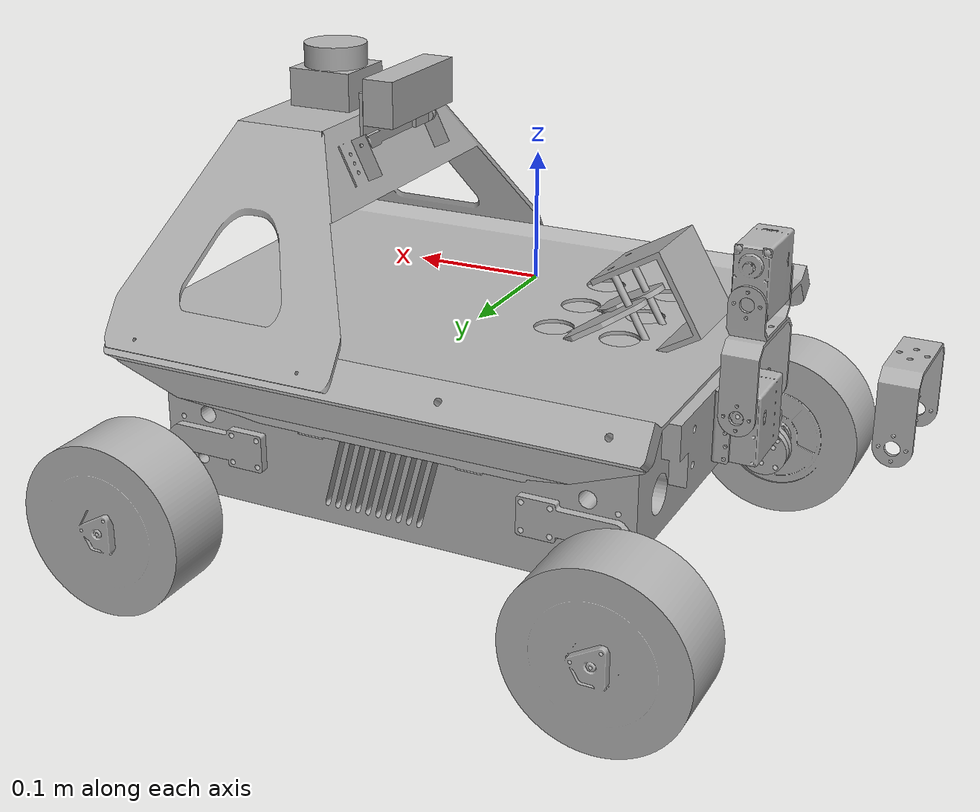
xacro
<?xml version="1.0" ?>
<robot name="v6" xmlns:xacro="http://www.ros.org/wiki/xacro">

<xacro:include filename="$(find v6_description)/urdf/materials.xacro" />
<xacro:include filename="$(find v6_description)/urdf/v6.trans" />
<xacro:include filename="$(find v6_description)/urdf/v6.gazebo" />
<link name="base_link">
  <inertial>
    <origin rpy="0 0 0" xyz="-0.11553126426818264 0.3343509101041353 0.06210098740688249"/>
    <mass value="37.56290080252228"/>
    <inertia ixx="0.155633" ixy="-0.0" ixz="0.000286" iyy="0.297492" iyz="0.0" izz="0.386843"/>
  </inertial>
  <visual>
    <origin rpy="0 0 0" xyz="0 0 0"/>
    <geometry>
      <mesh filename="v6_description/meshes/base_link.stl" scale="0.001 0.001 0.001"/>
    </geometry>
    <material name="silver"/>
  </visual>
  <collision>
    <origin rpy="0 0 0" xyz="0 0 0"/>
    <geometry>
      <mesh filename="v6_description/meshes/base_link.stl" scale="0.001 0.001 0.001"/>
    </geometry>
  </collision>
</link>

<link name="upper_blue_v1_1">
  <inertial>
    <origin rpy="0 0 0" xyz="0.0009557467788307433 0.0018926108398634733 -0.005546368824775272"/>
    <mass value="2.711654241548037"/>
    <inertia ixx="0.029512" ixy="4.7e-05" ixz="-1.7e-05" iyy="0.020937" iyz="-2e-05" izz="0.049756"/>
  </inertial>
  <visual>
    <origin rpy="0 0 0" xyz="0.114065 -0.334351 -0.110913"/>
    <geometry>
      <mesh filename="v6_description/meshes/upper_blue_v1_1.stl" scale="0.001 0.001 0.001"/>
    </geometry>
    <material name="silver"/>
  </visual>
  <collision>
    <origin rpy="0 0 0" xyz="0.114065 -0.334351 -0.110913"/>
    <geometry>
      <mesh filename="v6_description/meshes/upper_blue_v1_1.stl" scale="0.001 0.001 0.001"/>
    </geometry>
  </collision>
</link>

<link name="upper_silver_v1_1">
  <inertial>
    <origin rpy="0 0 0" xyz="-0.05442619134290837 0.1286556607713099 0.06371666752539593"/>
    <mass value="0.5901067825147455"/>
    <inertia ixx="0.004878" ixy="0.0" ixz="3e-05" iyy="0.001458" iyz="-0.0" izz="0.004735"/>
  </inertial>
  <visual>
    <origin rpy="0 0 0" xyz="-0.020935 -0.20677 -0.110239"/>
    <geometry>
      <mesh filename="v6_description/meshes/upper_silver_v1_1.stl" scale="0.001 0.001 0.001"/>
    </geometry>
    <material name="silver"/>
  </visual>
  <collision>
    <origin rpy="0 0 0" xyz="-0.020935 -0.20677 -0.110239"/>
    <geometry>
      <mesh filename="v6_description/meshes/upper_silver_v1_1.stl" scale="0.001 0.001 0.001"/>
    </geometry>
  </collision>
</link>

<link name="Side_U_Bracket_Component1_v2_1">
  <inertial>
    <origin rpy="0 0 0" xyz="-0.0021965017854476687 -8.991875011243877e-08 -8.398858180322377e-05"/>
    <mass value="0.02951040982880665"/>
    <inertia ixx="1.1e-05" ixy="0.0" ixz="-0.0" iyy="4e-06" iyz="-0.0" izz="7e-06"/>
  </inertial>
  <visual>
    <origin rpy="0 0 0" xyz="0.264049 -0.334351 -0.074934"/>
    <geometry>
      <mesh filename="v6_description/meshes/Side_U_Bracket_Component1_v2_1.stl" scale="0.001 0.001 0.001"/>
    </geometry>
    <material name="silver"/>
  </visual>
  <collision>
    <origin rpy="0 0 0" xyz="0.264049 -0.334351 -0.074934"/>
    <geometry>
      <mesh filename="v6_description/meshes/Side_U_Bracket_Component1_v2_1.stl" scale="0.001 0.001 0.001"/>
    </geometry>
  </collision>
</link>

<link name="new_motor_v2_1">
  <inertial>
    <origin rpy="0 0 0" xyz="-0.007329192500702741 -0.022426817930538745 0.017705283950517715"/>
    <mass value="0.2036448419526595"/>
    <inertia ixx="5.1e-05" ixy="-0.0" ixz="-0.0" iyy="3.5e-05" iyz="-0.0" izz="3e-05"/>
  </inertial>
  <visual>
    <origin rpy="0 0 0" xyz="0.271362 -0.354601 -0.057401"/>
    <geometry>
      <mesh filename="v6_description/meshes/new_motor_v2_1.stl" scale="0.001 0.001 0.001"/>
    </geometry>
    <material name="silver"/>
  </visual>
  <collision>
    <origin rpy="0 0 0" xyz="0.271362 -0.354601 -0.057401"/>
    <geometry>
      <mesh filename="v6_description/meshes/new_motor_v2_1.stl" scale="0.001 0.001 0.001"/>
    </geometry>
  </collision>
</link>

<link name="car_stand_v2_1">
  <inertial>
    <origin rpy="0 0 0" xyz="0.03988982720191274 -0.0025000899185844416 -0.017953891628120888"/>
    <mass value="0.06574803361092448"/>
    <inertia ixx="1.6e-05" ixy="0.0" ixz="1.6e-05" iyy="5.4e-05" iyz="0.0" izz="3.7e-05"/>
  </inertial>
  <visual>
    <origin rpy="0 0 0" xyz="0.034705 -0.234351 -0.052597"/>
    <geometry>
      <mesh filename="v6_description/meshes/car_stand_v2_1.stl" scale="0.001 0.001 0.001"/>
    </geometry>
    <material name="silver"/>
  </visual>
  <collision>
    <origin rpy="0 0 0" xyz="0.034705 -0.234351 -0.052597"/>
    <geometry>
      <mesh filename="v6_description/meshes/car_stand_v2_1.stl" scale="0.001 0.001 0.001"/>
    </geometry>
  </collision>
</link>

<link name="car_stand_2_v2_v1_1">
  <inertial>
    <origin rpy="0 0 0" xyz="-0.008838436779542623 0.0024999100814157293 -0.008838742405980921"/>
    <mass value="0.025649195499023388"/>
    <inertia ixx="1e-06" ixy="0.0" ixz="0.0" iyy="3e-06" iyz="0.0" izz="1e-06"/>
  </inertial>
  <visual>
    <origin rpy="0 0 0" xyz="-0.038906 -0.234351 -0.017587"/>
    <geometry>
      <mesh filename="v6_description/meshes/car_stand_2_v2_v1_1.stl" scale="0.001 0.001 0.001"/>
    </geometry>
    <material name="silver"/>
  </visual>
  <collision>
    <origin rpy="0 0 0" xyz="-0.038906 -0.234351 -0.017587"/>
    <geometry>
      <mesh filename="v6_description/meshes/car_stand_2_v2_v1_1.stl" scale="0.001 0.001 0.001"/>
    </geometry>
  </collision>
</link>

<link name="new_wheel_v1_1">
  <inertial>
    <origin rpy="0 0 0" xyz="-7.661286367220688e-07 -0.03633722962657118 1.709065836411755e-06"/>
    <mass value="2.7644063382593123"/>
    <inertia ixx="0.002173" ixy="-0.0" ixz="0.0" iyy="0.003475" iyz="-0.0" izz="0.002173"/>
  </inertial>
  <visual>
    <origin rpy="0 0 0" xyz="-0.030068 -0.229351 -0.008748"/>
    <geometry>
      <mesh filename="v6_description/meshes/new_wheel_v1_1.stl" scale="0.001 0.001 0.001"/>
    </geometry>
    <material name="silver"/>
  </visual>
  <collision>
    <origin rpy="0 0 0" xyz="-0.030068 -0.229351 -0.008748"/>
    <geometry>
      <mesh filename="v6_description/meshes/new_wheel_v1_1.stl" scale="0.001 0.001 0.001"/>
    </geometry>
  </collision>
</link>

<link name="car_stand_v2__1__1">
  <inertial>
    <origin rpy="0 0 0" xyz="0.03988982720191739 0.0024999100814168673 -0.017953891628120867"/>
    <mass value="0.06574803361092448"/>
    <inertia ixx="1.6e-05" ixy="0.0" ixz="1.6e-05" iyy="5.4e-05" iyz="0.0" izz="3.7e-05"/>
  </inertial>
  <visual>
    <origin rpy="0 0 0" xyz="0.034705 -0.434351 -0.052597"/>
    <geometry>
      <mesh filename="v6_description/meshes/car_stand_v2__1__1.stl" scale="0.001 0.001 0.001"/>
    </geometry>
    <material name="silver"/>
  </visual>
  <collision>
    <origin rpy="0 0 0" xyz="0.034705 -0.434351 -0.052597"/>
    <geometry>
      <mesh filename="v6_description/meshes/car_stand_v2__1__1.stl" scale="0.001 0.001 0.001"/>
    </geometry>
  </collision>
</link>

<link name="car_stand_2_v2_v1__1__1">
  <inertial>
    <origin rpy="0 0 0" xyz="-0.008838436779537981 -0.002500089918583026 -0.008838742405980895"/>
    <mass value="0.025649195499023388"/>
    <inertia ixx="1e-06" ixy="-0.0" ixz="0.0" iyy="3e-06" iyz="0.0" izz="1e-06"/>
  </inertial>
  <visual>
    <origin rpy="0 0 0" xyz="-0.038906 -0.434351 -0.017587"/>
    <geometry>
      <mesh filename="v6_description/meshes/car_stand_2_v2_v1__1__1.stl" scale="0.001 0.001 0.001"/>
    </geometry>
    <material name="silver"/>
  </visual>
  <collision>
    <origin rpy="0 0 0" xyz="-0.038906 -0.434351 -0.017587"/>
    <geometry>
      <mesh filename="v6_description/meshes/car_stand_2_v2_v1__1__1.stl" scale="0.001 0.001 0.001"/>
    </geometry>
  </collision>
</link>

<link name="new_wheel_v1__1__1">
  <inertial>
    <origin rpy="0 0 0" xyz="-7.66128632066071e-07 0.036337049789403775 -1.1938777991337551e-06"/>
    <mass value="2.7644063382593123"/>
    <inertia ixx="0.002173" ixy="0.0" ixz="-0.0" iyy="0.003475" iyz="-0.0" izz="0.002173"/>
  </inertial>
  <visual>
    <origin rpy="0 0 0" xyz="-0.030068 -0.439351 -0.008748"/>
    <geometry>
      <mesh filename="v6_description/meshes/new_wheel_v1__1__1.stl" scale="0.001 0.001 0.001"/>
    </geometry>
    <material name="silver"/>
  </visual>
  <collision>
    <origin rpy="0 0 0" xyz="-0.030068 -0.439351 -0.008748"/>
    <geometry>
      <mesh filename="v6_description/meshes/new_wheel_v1__1__1.stl" scale="0.001 0.001 0.001"/>
    </geometry>
  </collision>
</link>

<link name="car_stand_v2__2__1">
  <inertial>
    <origin rpy="0 0 0" xyz="-0.039890552712641136 -0.002500089918581444 -0.01795389162812419"/>
    <mass value="0.06574803361092448"/>
    <inertia ixx="1.6e-05" ixy="0.0" ixz="-1.6e-05" iyy="5.4e-05" iyz="-0.0" izz="3.7e-05"/>
  </inertial>
  <visual>
    <origin rpy="0 0 0" xyz="0.193373 -0.234351 -0.052597"/>
    <geometry>
      <mesh filename="v6_description/meshes/car_stand_v2__2__1.stl" scale="0.001 0.001 0.001"/>
    </geometry>
    <material name="silver"/>
  </visual>
  <collision>
    <origin rpy="0 0 0" xyz="0.193373 -0.234351 -0.052597"/>
    <geometry>
      <mesh filename="v6_description/meshes/car_stand_v2__2__1.stl" scale="0.001 0.001 0.001"/>
    </geometry>
  </collision>
</link>

<link name="car_stand_2_v2_v1__2__1">
  <inertial>
    <origin rpy="0 0 0" xyz="0.00883871126878566 0.0024999100814186437 -0.008838742405986177"/>
    <mass value="0.025649195499023388"/>
    <inertia ixx="1e-06" ixy="0.0" ixz="0.0" iyy="3e-06" iyz="-0.0" izz="1e-06"/>
  </inertial>
  <visual>
    <origin rpy="0 0 0" xyz="0.266985 -0.234351 -0.017587"/>
    <geometry>
      <mesh filename="v6_description/meshes/car_stand_2_v2_v1__2__1.stl" scale="0.001 0.001 0.001"/>
    </geometry>
    <material name="silver"/>
  </visual>
  <collision>
    <origin rpy="0 0 0" xyz="0.266985 -0.234351 -0.017587"/>
    <geometry>
      <mesh filename="v6_description/meshes/car_stand_2_v2_v1__2__1.stl" scale="0.001 0.001 0.001"/>
    </geometry>
  </collision>
</link>

<link name="new_wheel_v1__2__1">
  <inertial>
    <origin rpy="0 0 0" xyz="-6.180803067135088e-07 -0.03633722962656821 1.7090658331400665e-06"/>
    <mass value="2.7644063382593123"/>
    <inertia ixx="0.002173" ixy="-0.0" ixz="0.0" iyy="0.003475" iyz="-0.0" izz="0.002173"/>
  </inertial>
  <visual>
    <origin rpy="0 0 0" xyz="0.258146 -0.229351 -0.008748"/>
    <geometry>
      <mesh filename="v6_description/meshes/new_wheel_v1__2__1.stl" scale="0.001 0.001 0.001"/>
    </geometry>
    <material name="silver"/>
  </visual>
  <collision>
    <origin rpy="0 0 0" xyz="0.258146 -0.229351 -0.008748"/>
    <geometry>
      <mesh filename="v6_description/meshes/new_wheel_v1__2__1.stl" scale="0.001 0.001 0.001"/>
    </geometry>
  </collision>
</link>

<link name="car_stand_v2__2___1__1">
  <inertial>
    <origin rpy="0 0 0" xyz="-0.02389055271263707 0.002499910081420531 -0.017953891628124496"/>
    <mass value="0.06574803361092448"/>
    <inertia ixx="1.6e-05" ixy="0.0" ixz="-1.6e-05" iyy="5.4e-05" iyz="0.0" izz="3.7e-05"/>
  </inertial>
  <visual>
    <origin rpy="0 0 0" xyz="0.209373 -0.434351 -0.052597"/>
    <geometry>
      <mesh filename="v6_description/meshes/car_stand_v2__2___1__1.stl" scale="0.001 0.001 0.001"/>
    </geometry>
    <material name="silver"/>
  </visual>
  <collision>
    <origin rpy="0 0 0" xyz="0.209373 -0.434351 -0.052597"/>
    <geometry>
      <mesh filename="v6_description/meshes/car_stand_v2__2___1__1.stl" scale="0.001 0.001 0.001"/>
    </geometry>
  </collision>
</link>

<link name="car_stand_2_v2_v1__2___1__1">
  <inertial>
    <origin rpy="0 0 0" xyz="0.008838711268789712 -0.0025000899185792513 -0.008838742405986496"/>
    <mass value="0.025649195499023388"/>
    <inertia ixx="1e-06" ixy="0.0" ixz="0.0" iyy="3e-06" iyz="0.0" izz="1e-06"/>
  </inertial>
  <visual>
    <origin rpy="0 0 0" xyz="0.266985 -0.434351 -0.017587"/>
    <geometry>
      <mesh filename="v6_description/meshes/car_stand_2_v2_v1__2___1__1.stl" scale="0.001 0.001 0.001"/>
    </geometry>
    <material name="silver"/>
  </visual>
  <collision>
    <origin rpy="0 0 0" xyz="0.266985 -0.434351 -0.017587"/>
    <geometry>
      <mesh filename="v6_description/meshes/car_stand_2_v2_v1__2___1__1.stl" scale="0.001 0.001 0.001"/>
    </geometry>
  </collision>
</link>

<link name="new_wheel_v1__2___1__1">
  <inertial>
    <origin rpy="0 0 0" xyz="-6.180803027167059e-07 0.036337049789407494 -1.1938778027593272e-06"/>
    <mass value="2.7644063382593123"/>
    <inertia ixx="0.002173" ixy="0.0" ixz="-0.0" iyy="0.003475" iyz="-0.0" izz="0.002173"/>
  </inertial>
  <visual>
    <origin rpy="0 0 0" xyz="0.258146 -0.439351 -0.008748"/>
    <geometry>
      <mesh filename="v6_description/meshes/new_wheel_v1__2___1__1.stl" scale="0.001 0.001 0.001"/>
    </geometry>
    <material name="silver"/>
  </visual>
  <collision>
    <origin rpy="0 0 0" xyz="0.258146 -0.439351 -0.008748"/>
    <geometry>
      <mesh filename="v6_description/meshes/new_wheel_v1__2___1__1.stl" scale="0.001 0.001 0.001"/>
    </geometry>
  </collision>
</link>

<link name="big_U_self_v2_1">
  <inertial>
    <origin rpy="0 0 0" xyz="-9.161679706937154e-06 -8.991395844537564e-08 0.024237580500525185"/>
    <mass value="0.041847447766480805"/>
    <inertia ixx="3.2e-05" ixy="0.0" ixz="0.0" iyy="1.1e-05" iyz="0.0" izz="2.4e-05"/>
  </inertial>
  <visual>
    <origin rpy="0 0 0" xyz="0.278674 -0.334851 -0.085006"/>
    <geometry>
      <mesh filename="v6_description/meshes/big_U_self_v2_1.stl" scale="0.001 0.001 0.001"/>
    </geometry>
    <material name="silver"/>
  </visual>
  <collision>
    <origin rpy="0 0 0" xyz="0.278674 -0.334851 -0.085006"/>
    <geometry>
      <mesh filename="v6_description/meshes/big_U_self_v2_1.stl" scale="0.001 0.001 0.001"/>
    </geometry>
  </collision>
</link>

<link name="small_U_self_v3_v2_1">
  <inertial>
    <origin rpy="0 0 0" xyz="-3.4223399267285792e-06 -0.0005384482108122812 0.009287553972544299"/>
    <mass value="0.025534175468152884"/>
    <inertia ixx="1e-05" ixy="-0.0" ixz="0.0" iyy="3e-06" iyz="0.0" izz="9e-06"/>
  </inertial>
  <visual>
    <origin rpy="0 0 0" xyz="0.278689 -0.334851 -0.125006"/>
    <geometry>
      <mesh filename="v6_description/meshes/small_U_self_v3_v2_1.stl" scale="0.001 0.001 0.001"/>
    </geometry>
    <material name="silver"/>
  </visual>
  <collision>
    <origin rpy="0 0 0" xyz="0.278689 -0.334851 -0.125006"/>
    <geometry>
      <mesh filename="v6_description/meshes/small_U_self_v3_v2_1.stl" scale="0.001 0.001 0.001"/>
    </geometry>
  </collision>
</link>

<link name="new_motor_v2__1__1">
  <inertial>
    <origin rpy="0 0 0" xyz="-0.007555358297381132 0.02242666044587277 0.002653498778970337"/>
    <mass value="0.20364393858439991"/>
    <inertia ixx="5.1e-05" ixy="-0.0" ixz="0.0" iyy="3.5e-05" iyz="0.0" izz="3e-05"/>
  </inertial>
  <visual>
    <origin rpy="0 0 0" xyz="0.271199 -0.314601 -0.152509"/>
    <geometry>
      <mesh filename="v6_description/meshes/new_motor_v2__1__1.stl" scale="0.001 0.001 0.001"/>
    </geometry>
    <material name="silver"/>
  </visual>
  <collision>
    <origin rpy="0 0 0" xyz="0.271199 -0.314601 -0.152509"/>
    <geometry>
      <mesh filename="v6_description/meshes/new_motor_v2__1__1.stl" scale="0.001 0.001 0.001"/>
    </geometry>
  </collision>
</link>

<link name="big_U_self_v2__1__1">
  <inertial>
    <origin rpy="0 0 0" xyz="0.020995083755278143 -8.99093536843587e-08 -0.01211090571389134"/>
    <mass value="0.04184744776647988"/>
    <inertia ixx="2.6e-05" ixy="0.0" ixz="4e-06" iyy="1.1e-05" iyz="0.0" izz="3e-05"/>
  </inertial>
  <visual>
    <origin rpy="0 0 0" xyz="0.278704 -0.334351 -0.165006"/>
    <geometry>
      <mesh filename="v6_description/meshes/big_U_self_v2__1__1.stl" scale="0.001 0.001 0.001"/>
    </geometry>
    <material name="silver"/>
  </visual>
  <collision>
    <origin rpy="0 0 0" xyz="0.278704 -0.334351 -0.165006"/>
    <geometry>
      <mesh filename="v6_description/meshes/big_U_self_v2__1__1.stl" scale="0.001 0.001 0.001"/>
    </geometry>
  </collision>
</link>

<link name="grap_base_v1_1">
  <inertial>
    <origin rpy="0 0 0" xyz="0.013613530613986763 -8.989555810856587e-08 -0.007918424860268225"/>
    <mass value="0.16096668074514336"/>
    <inertia ixx="9e-05" ixy="-0.0" ixz="-1.4e-05" iyy="9.8e-05" iyz="-0.0" izz="7.4e-05"/>
  </inertial>
  <visual>
    <origin rpy="0 0 0" xyz="0.244055 -0.334351 -0.145019"/>
    <geometry>
      <mesh filename="v6_description/meshes/grap_base_v1_1.stl" scale="0.001 0.001 0.001"/>
    </geometry>
    <material name="silver"/>
  </visual>
  <collision>
    <origin rpy="0 0 0" xyz="0.244055 -0.334351 -0.145019"/>
    <geometry>
      <mesh filename="v6_description/meshes/grap_base_v1_1.stl" scale="0.001 0.001 0.001"/>
    </geometry>
  </collision>
</link>

<link name="grap2_v2_1">
  <inertial>
    <origin rpy="0 0 0" xyz="0.027888487942386214 0.005586980713945755 -0.017371770172090475"/>
    <mass value="0.040626783640930766"/>
    <inertia ixx="1.1e-05" ixy="0.0" ixz="1.1e-05" iyy="2.6e-05" iyz="-0.0" izz="1.9e-05"/>
  </inertial>
  <visual>
    <origin rpy="0 0 0" xyz="0.213305 -0.346851 -0.12728"/>
    <geometry>
      <mesh filename="v6_description/meshes/grap2_v2_1.stl" scale="0.001 0.001 0.001"/>
    </geometry>
    <material name="silver"/>
  </visual>
  <collision>
    <origin rpy="0 0 0" xyz="0.213305 -0.346851 -0.12728"/>
    <geometry>
      <mesh filename="v6_description/meshes/grap2_v2_1.stl" scale="0.001 0.001 0.001"/>
    </geometry>
  </collision>
</link>

<link name="grap2_v2_Mirror__1">
  <inertial>
    <origin rpy="0 0 0" xyz="0.027888487955574054 -0.005587160472200259 -0.017371770172128903"/>
    <mass value="0.04062678364093079"/>
    <inertia ixx="1.1e-05" ixy="-0.0" ixz="1.1e-05" iyy="2.6e-05" iyz="0.0" izz="1.9e-05"/>
  </inertial>
  <visual>
    <origin rpy="0 0 0" xyz="0.213305 -0.321851 -0.12728"/>
    <geometry>
      <mesh filename="v6_description/meshes/grap2_v2_Mirror__1.stl" scale="0.001 0.001 0.001"/>
    </geometry>
    <material name="silver"/>
  </visual>
  <collision>
    <origin rpy="0 0 0" xyz="0.213305 -0.321851 -0.12728"/>
    <geometry>
      <mesh filename="v6_description/meshes/grap2_v2_Mirror__1.stl" scale="0.001 0.001 0.001"/>
    </geometry>
  </collision>
</link>

<link name="LiDAR_v1_1">
  <inertial>
    <origin rpy="0 0 0" xyz="-1.3426645817035676e-07 -6.044196049215245e-08 0.015443036650391151"/>
    <mass value="0.31975775721502164"/>
    <inertia ixx="6.1e-05" ixy="0.0" ixz="0.0" iyy="6.1e-05" iyz="-0.0" izz="6.6e-05"/>
  </inertial>
  <visual>
    <origin rpy="0 0 0" xyz="0.029563 -0.335426 -0.216507"/>
    <geometry>
      <mesh filename="v6_description/meshes/LiDAR_v1_1.stl" scale="0.001 0.001 0.001"/>
    </geometry>
    <material name="silver"/>
  </visual>
  <collision>
    <origin rpy="0 0 0" xyz="0.029563 -0.335426 -0.216507"/>
    <geometry>
      <mesh filename="v6_description/meshes/LiDAR_v1_1.stl" scale="0.001 0.001 0.001"/>
    </geometry>
  </collision>
</link>

<link name="camera_support_1">
  <inertial>
    <origin rpy="0 0 0" xyz="0.0018274754038500318 3.8852965744684553e-07 0.009643908676382151"/>
    <mass value="0.04003969304541568"/>
    <inertia ixx="2.3e-05" ixy="0.0" ixz="-0.0" iyy="3e-06" iyz="0.0" izz="2e-05"/>
  </inertial>
  <visual>
    <origin rpy="0 0 0" xyz="0.067309 -0.335426 -0.205562"/>
    <geometry>
      <mesh filename="v6_description/meshes/camera_support_1.stl" scale="0.001 0.001 0.001"/>
    </geometry>
    <material name="silver"/>
  </visual>
  <collision>
    <origin rpy="0 0 0" xyz="0.067309 -0.335426 -0.205562"/>
    <geometry>
      <mesh filename="v6_description/meshes/camera_support_1.stl" scale="0.001 0.001 0.001"/>
    </geometry>
  </collision>
</link>

<link name="camera_1">
  <inertial>
    <origin rpy="0 0 0" xyz="-0.008999627683146258 3.885296694372542e-07 -4.0767394135499124e-07"/>
    <mass value="0.2435559840000003"/>
    <inertia ixx="0.000108" ixy="0.0" ixz="-0.0" iyy="1.9e-05" iyz="0.0" izz="0.000102"/>
  </inertial>
  <visual>
    <origin rpy="0 0 0" xyz="0.066117 -0.335426 -0.227644"/>
    <geometry>
      <mesh filename="v6_description/meshes/camera_1.stl" scale="0.001 0.001 0.001"/>
    </geometry>
    <material name="silver"/>
  </visual>
  <collision>
    <origin rpy="0 0 0" xyz="0.066117 -0.335426 -0.227644"/>
    <geometry>
      <mesh filename="v6_description/meshes/camera_1.stl" scale="0.001 0.001 0.001"/>
    </geometry>
  </collision>
</link>

<joint name="Rigid 1" type="fixed">
  <origin rpy="0 0 0" xyz="-0.114065 0.334351 0.110913"/>
  <parent link="base_link"/>
  <child link="upper_blue_v1_1"/>
</joint>

<joint name="Rigid 2" type="fixed">
  <origin rpy="0 0 0" xyz="0.135 -0.127581 -0.000674"/>
  <parent link="upper_blue_v1_1"/>
  <child link="upper_silver_v1_1"/>
</joint>

<joint name="Rigid 3" type="fixed">
  <origin rpy="0 0 0" xyz="-0.264049 0.334351 0.074934"/>
  <parent link="base_link"/>
  <child link="Side_U_Bracket_Component1_v2_1"/>
</joint>

<joint name="Rigid 16" type="fixed">
  <origin rpy="0 0 0" xyz="-0.007313 0.02025 -0.017533"/>
  <parent link="Side_U_Bracket_Component1_v2_1"/>
  <child link="new_motor_v2_1"/>
</joint>

<joint name="Rigid 27" type="fixed">
  <origin rpy="0 0 0" xyz="-0.034705 0.234351 0.052597"/>
  <parent link="base_link"/>
  <child link="car_stand_v2_1"/>
</joint>

<joint name="Rigid 28" type="fixed">
  <origin rpy="0 0 0" xyz="0.073611 0.0 -0.03501"/>
  <parent link="car_stand_v2_1"/>
  <child link="car_stand_2_v2_v1_1"/>
</joint>

<joint name="Revolute 29" type="continuous">
  <origin rpy="0 0 0" xyz="0.064773 -0.005 -0.043849"/>
  <parent link="car_stand_v2_1"/>
  <child link="new_wheel_v1_1"/>
  <axis xyz="0.0 1.0 0.0"/>
</joint>

<joint name="Rigid 30" type="fixed">
  <origin rpy="0 0 0" xyz="-0.034705 0.434351 0.052597"/>
  <parent link="base_link"/>
  <child link="car_stand_v2__1__1"/>
</joint>

<joint name="Rigid 31" type="fixed">
  <origin rpy="0 0 0" xyz="0.073611 0.0 -0.03501"/>
  <parent link="car_stand_v2__1__1"/>
  <child link="car_stand_2_v2_v1__1__1"/>
</joint>

<joint name="Revolute 32" type="continuous">
  <origin rpy="0 0 0" xyz="0.064773 0.005 -0.043849"/>
  <parent link="car_stand_v2__1__1"/>
  <child link="new_wheel_v1__1__1"/>
  <axis xyz="0.0 1.0 0.0"/>
</joint>

<joint name="Rigid 33" type="fixed">
  <origin rpy="0 0 0" xyz="-0.193373 0.234351 0.052597"/>
  <parent link="base_link"/>
  <child link="car_stand_v2__2__1"/>
</joint>

<joint name="Rigid 34" type="fixed">
  <origin rpy="0 0 0" xyz="-0.073612 0.0 -0.03501"/>
  <parent link="car_stand_v2__2__1"/>
  <child link="car_stand_2_v2_v1__2__1"/>
</joint>

<joint name="Revolute 35" type="continuous">
  <origin rpy="0 0 0" xyz="-0.064773 -0.005 -0.043849"/>
  <parent link="car_stand_v2__2__1"/>
  <child link="new_wheel_v1__2__1"/>
  <axis xyz="0.0 -1.0 -0.0"/>
</joint>

<joint name="Rigid 36" type="fixed">
  <origin rpy="0 0 0" xyz="-0.209373 0.434351 0.052597"/>
  <parent link="base_link"/>
  <child link="car_stand_v2__2___1__1"/>
</joint>

<joint name="Rigid 37" type="fixed">
  <origin rpy="0 0 0" xyz="-0.057612 0.0 -0.03501"/>
  <parent link="car_stand_v2__2___1__1"/>
  <child link="car_stand_2_v2_v1__2___1__1"/>
</joint>

<joint name="Revolute 38" type="continuous">
  <origin rpy="0 0 0" xyz="-0.048773 0.005 -0.043849"/>
  <parent link="car_stand_v2__2___1__1"/>
  <child link="new_wheel_v1__2___1__1"/>
  <axis xyz="-0.0 1.0 0.0"/>
</joint>

<joint name="Revolute 41" type="continuous">
  <origin rpy="0 0 0" xyz="-0.007312 -0.01975 0.027605"/>
  <parent link="new_motor_v2_1"/>
  <child link="big_U_self_v2_1"/>
  <axis xyz="0.0 -1.0 0.0"/>
</joint>

<joint name="Rigid 42" type="fixed">
  <origin rpy="0 0 0" xyz="-1.5e-05 0.0 0.04"/>
  <parent link="big_U_self_v2_1"/>
  <child link="small_U_self_v3_v2_1"/>
</joint>

<joint name="Rigid 43" type="fixed">
  <origin rpy="0 0 0" xyz="0.00749 -0.02025 0.027503"/>
  <parent link="small_U_self_v3_v2_1"/>
  <child link="new_motor_v2__1__1"/>
</joint>

<joint name="Revolute 44" type="continuous">
  <origin rpy="0 0 0" xyz="-0.007505 0.01975 0.012497"/>
  <parent link="new_motor_v2__1__1"/>
  <child link="big_U_self_v2__1__1"/>
  <axis xyz="0.0 -1.0 -0.0"/>
</joint>

<joint name="Rigid 45" type="fixed">
  <origin rpy="0 0 0" xyz="0.034649 0.0 -0.019987"/>
  <parent link="big_U_self_v2__1__1"/>
  <child link="grap_base_v1_1"/>
</joint>

<joint name="Revolute 48" type="continuous">
  <origin rpy="0 0 0" xyz="0.03075 0.0125 -0.017739"/>
  <parent link="grap_base_v1_1"/>
  <child link="grap2_v2_1"/>
  <axis xyz="0.49968 0.0 0.86621"/>
</joint>

<joint name="Revolute 49" type="continuous">
  <origin rpy="0 0 0" xyz="0.03075 -0.0125 -0.017739"/>
  <parent link="grap_base_v1_1"/>
  <child link="grap2_v2_Mirror__1"/>
  <axis xyz="-0.49968 -0.0 -0.86621"/>
</joint>

<joint name="Rigid 50" type="fixed">
  <origin rpy="0 0 0" xyz="-0.050498 0.128656 0.106268"/>
  <parent link="upper_silver_v1_1"/>
  <child link="LiDAR_v1_1"/>
</joint>

<joint name="Revolute 51" type="continuous">
  <origin rpy="0 0 0" xyz="-0.088244 0.128656 0.095323"/>
  <parent link="upper_silver_v1_1"/>
  <child link="camera_support_1"/>
  <axis xyz="-0.0 -1.0 -0.0"/>
</joint>

<joint name="Rigid 52" type="fixed">
  <origin rpy="0 0 0" xyz="0.001192 0.0 0.022082"/>
  <parent link="camera_support_1"/>
  <child link="camera_1"/>
</joint>

</robot>

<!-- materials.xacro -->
<robot name="v6" xmlns:xacro="http://www.ros.org/wiki/xacro" >

<material name="silver">
  <color rgba="0.700 0.700 0.700 1.000"/>
</material>

</robot>

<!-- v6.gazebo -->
<robot name="v6" xmlns:xacro="http://www.ros.org/wiki/xacro" >

<xacro:property name="body_color" value="Gazebo/Silver" />

<gazebo>
  <plugin filename="libgazebo_ros_control.so" name="control"/>
</gazebo>
<gazebo reference="base_link">
  <material>${body_color}</material>
  <mu1>0.2</mu1>
  <mu2>0.2</mu2>
  <selfCollide>true</selfCollide>
  <gravity>true</gravity>
</gazebo>

<gazebo reference="upper_blue_v1_1">
  <material>${body_color}</material>
  <mu1>0.2</mu1>
  <mu2>0.2</mu2>
  <selfCollide>true</selfCollide>
</gazebo>

<gazebo reference="upper_silver_v1_1">
  <material>${body_color}</material>
  <mu1>0.2</mu1>
  <mu2>0.2</mu2>
  <selfCollide>true</selfCollide>
</gazebo>

<gazebo reference="Side_U_Bracket_Component1_v2_1">
  <material>${body_color}</material>
  <mu1>0.2</mu1>
  <mu2>0.2</mu2>
  <selfCollide>true</selfCollide>
</gazebo>

<gazebo reference="new_motor_v2_1">
  <material>${body_color}</material>
  <mu1>0.2</mu1>
  <mu2>0.2</mu2>
  <selfCollide>true</selfCollide>
</gazebo>

<gazebo reference="car_stand_v2_1">
  <material>${body_color}</material>
  <mu1>0.2</mu1>
  <mu2>0.2</mu2>
  <selfCollide>true</selfCollide>
</gazebo>

<gazebo reference="car_stand_2_v2_v1_1">
  <material>${body_color}</material>
  <mu1>0.2</mu1>
  <mu2>0.2</mu2>
  <selfCollide>true</selfCollide>
</gazebo>

<gazebo reference="new_wheel_v1_1">
  <material>${body_color}</material>
  <mu1>0.2</mu1>
  <mu2>0.2</mu2>
  <selfCollide>true</selfCollide>
</gazebo>

<gazebo reference="car_stand_v2__1__1">
  <material>${body_color}</material>
  <mu1>0.2</mu1>
  <mu2>0.2</mu2>
  <selfCollide>true</selfCollide>
</gazebo>

<gazebo reference="car_stand_2_v2_v1__1__1">
  <material>${body_color}</material>
  <mu1>0.2</mu1>
  <mu2>0.2</mu2>
  <selfCollide>true</selfCollide>
</gazebo>

<gazebo reference="new_wheel_v1__1__1">
  <material>${body_color}</material>
  <mu1>0.2</mu1>
  <mu2>0.2</mu2>
  <selfCollide>true</selfCollide>
</gazebo>

<gazebo reference="car_stand_v2__2__1">
  <material>${body_color}</material>
  <mu1>0.2</mu1>
  <mu2>0.2</mu2>
  <selfCollide>true</selfCollide>
</gazebo>

<gazebo reference="car_stand_2_v2_v1__2__1">
  <material>${body_color}</material>
  <mu1>0.2</mu1>
  <mu2>0.2</mu2>
  <selfCollide>true</selfCollide>
</gazebo>

<gazebo reference="new_wheel_v1__2__1">
  <material>${body_color}</material>
  <mu1>0.2</mu1>
  <mu2>0.2</mu2>
  <selfCollide>true</selfCollide>
</gazebo>

<gazebo reference="car_stand_v2__2___1__1">
  <material>${body_color}</material>
  <mu1>0.2</mu1>
  <mu2>0.2</mu2>
  <selfCollide>true</selfCollide>
</gazebo>

<gazebo reference="car_stand_2_v2_v1__2___1__1">
  <material>${body_color}</material>
  <mu1>0.2</mu1>
  <mu2>0.2</mu2>
  <selfCollide>true</selfCollide>
</gazebo>

<gazebo reference="new_wheel_v1__2___1__1">
  <material>${body_color}</material>
  <mu1>0.2</mu1>
  <mu2>0.2</mu2>
  <selfCollide>true</selfCollide>
</gazebo>

<gazebo reference="big_U_self_v2_1">
  <material>${body_color}</material>
  <mu1>0.2</mu1>
  <mu2>0.2</mu2>
  <selfCollide>true</selfCollide>
</gazebo>

<gazebo reference="small_U_self_v3_v2_1">
  <material>${body_color}</material>
  <mu1>0.2</mu1>
  <mu2>0.2</mu2>
  <selfCollide>true</selfCollide>
</gazebo>

<gazebo reference="new_motor_v2__1__1">
  <material>${body_color}</material>
  <mu1>0.2</mu1>
  <mu2>0.2</mu2>
  <selfCollide>true</selfCollide>
</gazebo>

<gazebo reference="big_U_self_v2__1__1">
  <material>${body_color}</material>
  <mu1>0.2</mu1>
  <mu2>0.2</mu2>
  <selfCollide>true</selfCollide>
</gazebo>

<gazebo reference="grap_base_v1_1">
  <material>${body_color}</material>
  <mu1>0.2</mu1>
  <mu2>0.2</mu2>
  <selfCollide>true</selfCollide>
</gazebo>

<gazebo reference="grap2_v2_1">
  <material>${body_color}</material>
  <mu1>0.2</mu1>
  <mu2>0.2</mu2>
  <selfCollide>true</selfCollide>
</gazebo>

<gazebo reference="grap2_v2_Mirror__1">
  <material>${body_color}</material>
  <mu1>0.2</mu1>
  <mu2>0.2</mu2>
  <selfCollide>true</selfCollide>
</gazebo>

<gazebo reference="LiDAR_v1_1">
  <material>${body_color}</material>
  <mu1>0.2</mu1>
  <mu2>0.2</mu2>
  <selfCollide>true</selfCollide>
</gazebo>

<gazebo reference="camera_support_1">
  <material>${body_color}</material>
  <mu1>0.2</mu1>
  <mu2>0.2</mu2>
  <selfCollide>true</selfCollide>
</gazebo>

<gazebo reference="camera_1">
  <material>${body_color}</material>
  <mu1>0.2</mu1>
  <mu2>0.2</mu2>
  <selfCollide>true</selfCollide>
</gazebo>

</robot>
